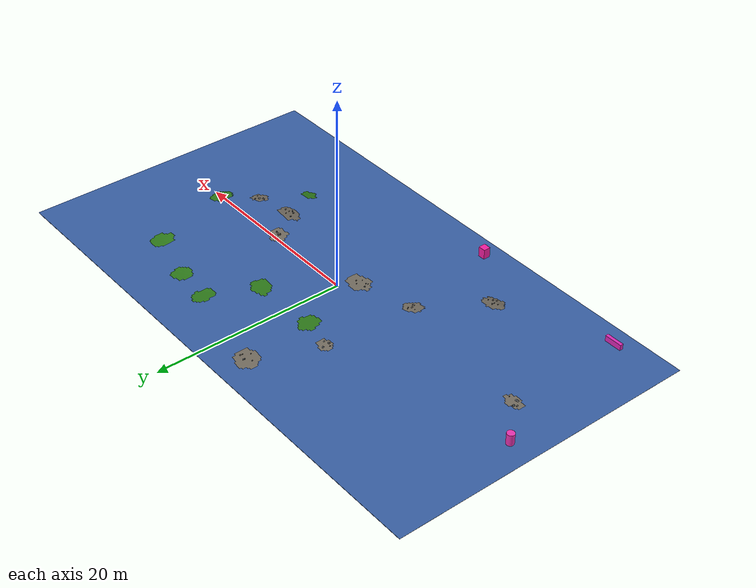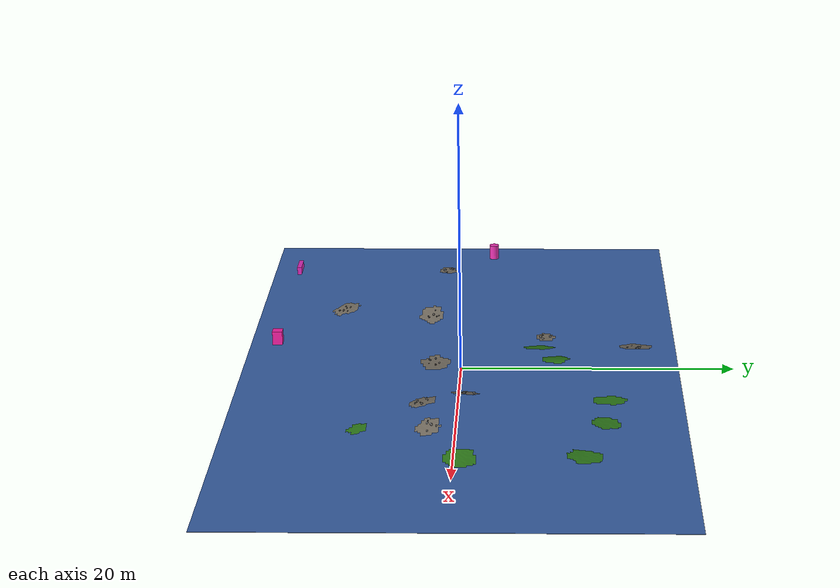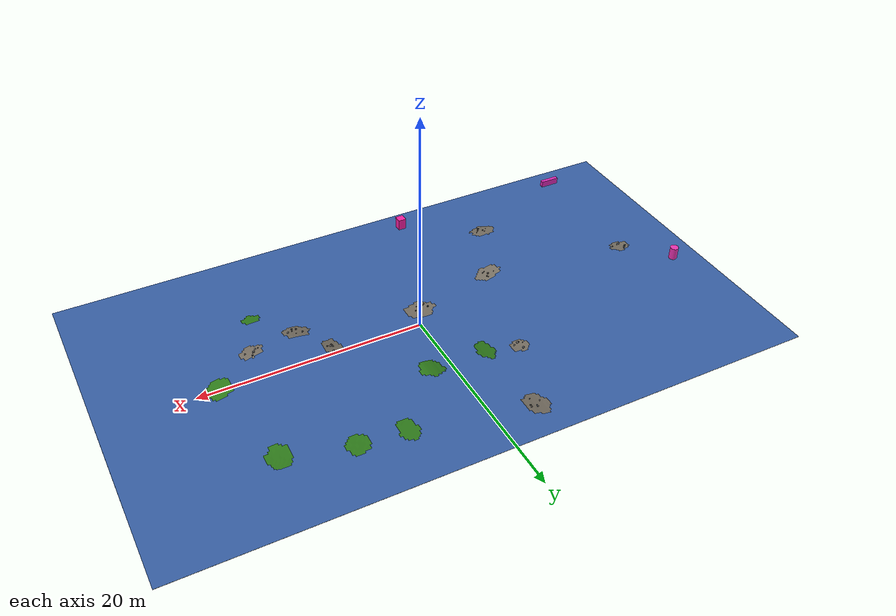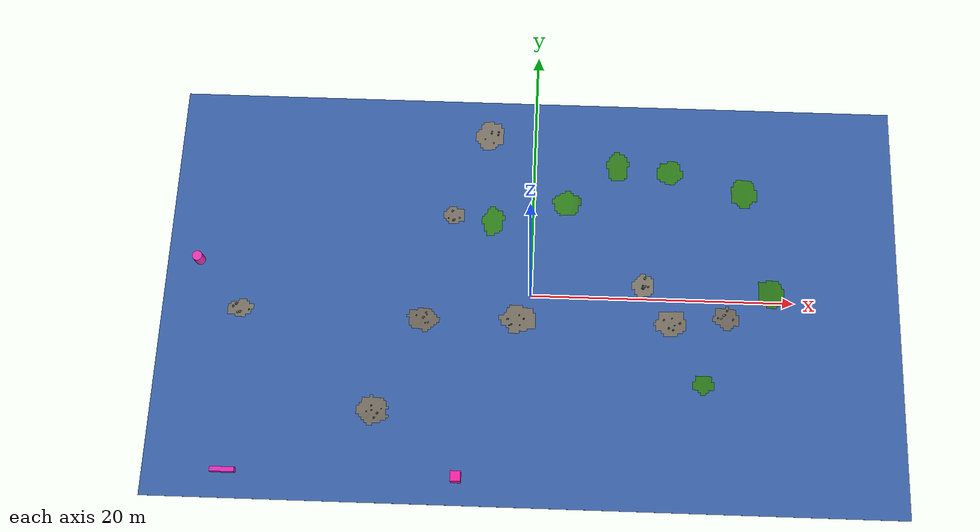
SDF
<sdf version="1.8">
 <world name="semantic_segmentation_world">
  <model name="heightmap_terrain_collision">
   <static>true</static>
   <link name="terrain_collision_link">
    <collision name="terrain_collision">
     <geometry>
      <heightmap>
       <uri>file://assets/quad_height.png</uri>
       <size>51.2 51.2 2.500000000</size>
       <pos>0 0 0</pos>
      </heightmap>
     </geometry>
     <surface><friction><ode><mu>1.1</mu><mu2>1.1</mu2></ode></friction></surface>
    </collision>
   </link>
  </model>
  <model name="flat_ground">
   <static>true</static>
   <link name="ground_link">
    <collision name="ground_collision">
     <geometry><box><size>56.000000 32.000000 0.030000</size></box></geometry>
     <surface><friction><ode><mu>1.0</mu><mu2>1.0</mu2></ode></friction></surface>
    </collision>
    <visual name="ground_visual">
     <geometry><box><size>56.000000 32.000000 0.030000</size></box></geometry>
     <material>
      <ambient>0.15839999999999999 0.2736 0.46799999999999997 1.0</ambient>
      <diffuse>0.22 0.38 0.65 1.0</diffuse>
      <specular>0.04 0.04 0.04 1.0</specular>
      <pbr>
       <metal>
        <albedo_map>file://assets/blue_ground.jpg</albedo_map>
        <roughness>0.9</roughness>
        <metalness>0.0</metalness>
       </metal>
      </pbr>
     </material>
    </visual>
   </link>
   <plugin filename="ignition-gazebo-label-system" name="ignition::gazebo::systems::Label">
    <label>1</label>
   </plugin>
  </model>
  <model name="grass_surface">
   <static>true</static>
   <link name="grass_surface_link">
    <visual name="grass_surface_visual">
     <geometry><mesh><uri>file://assets/grass_small_patches.obj</uri></mesh></geometry>
     <material>
      <ambient>0.1296 0.34559999999999996 0.072 1.0</ambient>
      <diffuse>0.18 0.48 0.1 1.0</diffuse>
      <specular>0.04 0.04 0.04 1.0</specular>
     </material>
     <cast_shadows>false</cast_shadows>
    </visual>
   </link>
   <plugin filename="ignition-gazebo-label-system" name="ignition::gazebo::systems::Label">
    <label>2</label>
   </plugin>
  </model>
  <model name="gravel_surface">
   <static>true</static>
   <link name="gravel_surface_link">
    <visual name="gravel_surface_visual">
     <geometry><mesh><uri>file://assets/gravel_small_patches.obj</uri></mesh></geometry>
     <material>
      <ambient>0.3312 0.3096 0.2736 1.0</ambient>
      <diffuse>0.46 0.43 0.38 1.0</diffuse>
      <specular>0.04 0.04 0.04 1.0</specular>
     </material>
     <cast_shadows>false</cast_shadows>
    </visual>
   </link>
   <plugin filename="ignition-gazebo-label-system" name="ignition::gazebo::systems::Label">
    <label>3</label>
   </plugin>
  </model>
  <model name="natural_rocks">
   <static>true</static>
   <link name="natural_rocks_link">
    <collision name="patch_01_stone_01_collision">
     <pose>-1.400813 -2.312199 0.070250 0.000000 0.000000 0.000000</pose>
     <geometry><sphere><radius>0.064482</radius></sphere></geometry>
     <surface><friction><ode><mu>1.0</mu><mu2>1.0</mu2></ode></friction></surface>
    </collision>
    <visual name="patch_01_stone_01_visual">
     <pose>-1.400813 -2.312199 0.070250 0.000000 0.000000 0.000000</pose>
     <geometry><sphere><radius>0.064482</radius></sphere></geometry>
     <material>
      <ambient>0.23031878038082693 0.24344725678887028 0.25657573319691357 1.0</ambient>
      <diffuse>0.31988719497337076 0.33812118998454205 0.35635518499571334 1.0</diffuse>
      <specular>0.04 0.04 0.04 1.0</specular>
     </material>
    </visual>
    <collision name="patch_01_stone_02_collision">
     <pose>-0.475857 -1.871641 0.071928 0.000000 0.000000 0.000000</pose>
     <geometry><sphere><radius>0.068250</radius></sphere></geometry>
     <surface><friction><ode><mu>1.0</mu><mu2>1.0</mu2></ode></friction></surface>
    </collision>
    <visual name="patch_01_stone_02_visual">
     <pose>-0.475857 -1.871641 0.071928 0.000000 0.000000 0.000000</pose>
     <geometry><sphere><radius>0.068250</radius></sphere></geometry>
     <material>
      <ambient>0.22597844898284078 0.2091066075628898 0.19223476614293877 1.0</ambient>
      <diffuse>0.3138589569206122 0.29042584383734693 0.26699273075408164 1.0</diffuse>
      <specular>0.04 0.04 0.04 1.0</specular>
     </material>
    </visual>
    <collision name="patch_01_stone_03_collision">
     <pose>-1.574241 -2.390171 0.067930 0.000000 0.000000 0.000000</pose>
     <geometry><sphere><radius>0.058431</radius></sphere></geometry>
     <surface><friction><ode><mu>1.0</mu><mu2>1.0</mu2></ode></friction></surface>
    </collision>
    <visual name="patch_01_stone_03_visual">
     <pose>-1.574241 -2.390171 0.067930 0.000000 0.000000 0.000000</pose>
     <geometry><sphere><radius>0.058431</radius></sphere></geometry>
     <material>
      <ambient>0.2741392310282517 0.27336239970204046 0.2725855683758292 1.0</ambient>
      <diffuse>0.380748931983683 0.3796699995861673 0.37859106718865165 1.0</diffuse>
      <specular>0.04 0.04 0.04 1.0</specular>
     </material>
    </visual>
    <collision name="patch_01_stone_04_collision">
     <pose>-1.700511 -1.913484 0.087154 0.000000 0.000000 0.000000</pose>
     <geometry><sphere><radius>0.080300</radius></sphere></geometry>
     <surface><friction><ode><mu>1.0</mu><mu2>1.0</mu2></ode></friction></surface>
    </collision>
    <visual name="patch_01_stone_04_visual">
     <pose>-1.700511 -1.913484 0.087154 0.000000 0.000000 0.000000</pose>
     <geometry><sphere><radius>0.080300</radius></sphere></geometry>
     <material>
      <ambient>0.18909966763713545 0.20659957556439554 0.2240994834916556 1.0</ambient>
      <diffuse>0.26263842727379927 0.28694385495054936 0.31124928262729945 1.0</diffuse>
      <specular>0.04 0.04 0.04 1.0</specular>
     </material>
    </visual>
    <collision name="patch_01_stone_05_collision">
     <pose>-0.779596 -2.372807 0.053223 0.000000 0.000000 0.000000</pose>
     <geometry><sphere><radius>0.048469</radius></sphere></geometry>
     <surface><friction><ode><mu>1.0</mu><mu2>1.0</mu2></ode></friction></surface>
    </collision>
    <visual name="patch_01_stone_05_visual">
     <pose>-0.779596 -2.372807 0.053223 0.000000 0.000000 0.000000</pose>
     <geometry><sphere><radius>0.048469</radius></sphere></geometry>
     <material>
      <ambient>0.25142629394607535 0.24319022346497113 0.23495415298386696 1.0</ambient>
      <diffuse>0.34920318603621575 0.3377641992569044 0.326325212477593 1.0</diffuse>
      <specular>0.04 0.04 0.04 1.0</specular>
     </material>
    </visual>
    <collision name="patch_01_stone_06_collision">
     <pose>-0.844577 -1.602838 0.071304 0.000000 0.000000 0.000000</pose>
     <geometry><sphere><radius>0.066862</radius></sphere></geometry>
     <surface><friction><ode><mu>1.0</mu><mu2>1.0</mu2></ode></friction></surface>
    </collision>
    <visual name="patch_01_stone_06_visual">
     <pose>-0.844577 -1.602838 0.071304 0.000000 0.000000 0.000000</pose>
     <geometry><sphere><radius>0.066862</radius></sphere></geometry>
     <material>
      <ambient>0.34569564078244597 0.3313426443958248 0.3169896480092036 1.0</ambient>
      <diffuse>0.4801328344200639 0.46019811721642334 0.4402634000127828 1.0</diffuse>
      <specular>0.04 0.04 0.04 1.0</specular>
     </material>
    </visual>
    <collision name="patch_02_stone_01_collision">
     <pose>8.813602 0.542755 1.563569 0.000000 0.000000 0.000000</pose>
     <geometry><sphere><radius>0.078546</radius></sphere></geometry>
     <surface><friction><ode><mu>1.0</mu><mu2>1.0</mu2></ode></friction></surface>
    </collision>
    <visual name="patch_02_stone_01_visual">
     <pose>8.813602 0.542755 1.563569 0.000000 0.000000 0.000000</pose>
     <geometry><sphere><radius>0.078546</radius></sphere></geometry>
     <material>
      <ambient>0.25730266982539796 0.2486146950774401 0.23992672032948223 1.0</ambient>
      <diffuse>0.35736481920194163 0.3452981876075557 0.3332315560131698 1.0</diffuse>
      <specular>0.04 0.04 0.04 1.0</specular>
     </material>
    </visual>
    <collision name="patch_02_stone_02_collision">
     <pose>8.570965 1.216734 1.469474 0.000000 0.000000 0.000000</pose>
     <geometry><sphere><radius>0.099684</radius></sphere></geometry>
     <surface><friction><ode><mu>1.0</mu><mu2>1.0</mu2></ode></friction></surface>
    </collision>
    <visual name="patch_02_stone_02_visual">
     <pose>8.570965 1.216734 1.469474 0.000000 0.000000 0.000000</pose>
     <geometry><sphere><radius>0.099684</radius></sphere></geometry>
     <material>
      <ambient>0.24657690552835226 0.25102890049770027 0.2554808954670482 1.0</ambient>
      <diffuse>0.3424679243449337 0.34865125069125036 0.354834577037567 1.0</diffuse>
      <specular>0.04 0.04 0.04 1.0</specular>
     </material>
    </visual>
    <collision name="patch_02_stone_03_collision">
     <pose>8.399833 0.613672 1.450029 0.000000 0.000000 0.000000</pose>
     <geometry><sphere><radius>0.080679</radius></sphere></geometry>
     <surface><friction><ode><mu>1.0</mu><mu2>1.0</mu2></ode></friction></surface>
    </collision>
    <visual name="patch_02_stone_03_visual">
     <pose>8.399833 0.613672 1.450029 0.000000 0.000000 0.000000</pose>
     <geometry><sphere><radius>0.080679</radius></sphere></geometry>
     <material>
      <ambient>0.24954241471094704 0.25148387960246454 0.2534253444939821 1.0</ambient>
      <diffuse>0.34658668709853757 0.34928316611453414 0.3519796451305307 1.0</diffuse>
      <specular>0.04 0.04 0.04 1.0</specular>
     </material>
    </visual>
    <collision name="patch_02_stone_04_collision">
     <pose>8.453732 0.386183 1.464443 0.000000 0.000000 0.000000</pose>
     <geometry><sphere><radius>0.055713</radius></sphere></geometry>
     <surface><friction><ode><mu>1.0</mu><mu2>1.0</mu2></ode></friction></surface>
    </collision>
    <visual name="patch_02_stone_04_visual">
     <pose>8.453732 0.386183 1.464443 0.000000 0.000000 0.000000</pose>
     <geometry><sphere><radius>0.055713</radius></sphere></geometry>
     <material>
      <ambient>0.2321781376242881 0.2222181409481468 0.21225814427200548 1.0</ambient>
      <diffuse>0.32246963558928904 0.3086363068724261 0.29480297815556317 1.0</diffuse>
      <specular>0.04 0.04 0.04 1.0</specular>
     </material>
    </visual>
    <collision name="patch_02_stone_05_collision">
     <pose>8.565533 0.566800 1.508316 0.000000 0.000000 0.000000</pose>
     <geometry><sphere><radius>0.098305</radius></sphere></geometry>
     <surface><friction><ode><mu>1.0</mu><mu2>1.0</mu2></ode></friction></surface>
    </collision>
    <visual name="patch_02_stone_05_visual">
     <pose>8.565533 0.566800 1.508316 0.000000 0.000000 0.000000</pose>
     <geometry><sphere><radius>0.098305</radius></sphere></geometry>
     <material>
      <ambient>0.2838612983448101 0.2785960032724128 0.2733307082000154 1.0</ambient>
      <diffuse>0.39425180325668074 0.38693889343390664 0.37962598361113253 1.0</diffuse>
      <specular>0.04 0.04 0.04 1.0</specular>
     </material>
    </visual>
    <collision name="patch_02_stone_06_collision">
     <pose>8.362515 0.448936 1.437671 0.000000 0.000000 0.000000</pose>
     <geometry><sphere><radius>0.057085</radius></sphere></geometry>
     <surface><friction><ode><mu>1.0</mu><mu2>1.0</mu2></ode></friction></surface>
    </collision>
    <visual name="patch_02_stone_06_visual">
     <pose>8.362515 0.448936 1.437671 0.000000 0.000000 0.000000</pose>
     <geometry><sphere><radius>0.057085</radius></sphere></geometry>
     <material>
      <ambient>0.3338619400763003 0.31902699025023 0.30419204042415965 1.0</ambient>
      <diffuse>0.4636971389948616 0.44309304201420835 0.4224889450335551 1.0</diffuse>
      <specular>0.04 0.04 0.04 1.0</specular>
     </material>
    </visual>
    <collision name="patch_03_stone_01_collision">
     <pose>-22.381382 -1.397717 0.086864 0.000000 0.000000 0.000000</pose>
     <geometry><sphere><radius>0.099413</radius></sphere></geometry>
     <surface><friction><ode><mu>1.0</mu><mu2>1.0</mu2></ode></friction></surface>
    </collision>
    <visual name="patch_03_stone_01_visual">
     <pose>-22.381382 -1.397717 0.086864 0.000000 0.000000 0.000000</pose>
     <geometry><sphere><radius>0.099413</radius></sphere></geometry>
     <material>
      <ambient>0.19900934207056545 0.21697289478900986 0.23493644750745424 1.0</ambient>
      <diffuse>0.2764018639868965 0.3013512427625137 0.3263006215381309 1.0</diffuse>
      <specular>0.04 0.04 0.04 1.0</specular>
     </material>
    </visual>
    <collision name="patch_03_stone_02_collision">
     <pose>-22.279584 -1.319368 0.067399 0.000000 0.000000 0.000000</pose>
     <geometry><sphere><radius>0.045068</radius></sphere></geometry>
     <surface><friction><ode><mu>1.0</mu><mu2>1.0</mu2></ode></friction></surface>
    </collision>
    <visual name="patch_03_stone_02_visual">
     <pose>-22.279584 -1.319368 0.067399 0.000000 0.000000 0.000000</pose>
     <geometry><sphere><radius>0.045068</radius></sphere></geometry>
     <material>
      <ambient>0.28673924344048574 0.28252767955964836 0.278316115678811 1.0</ambient>
      <diffuse>0.3982489492228969 0.39239955494395606 0.38655016066501524 1.0</diffuse>
      <specular>0.04 0.04 0.04 1.0</specular>
     </material>
    </visual>
    <collision name="patch_03_stone_03_collision">
     <pose>-22.202628 -2.046692 0.095681 0.000000 0.000000 0.000000</pose>
     <geometry><sphere><radius>0.099534</radius></sphere></geometry>
     <surface><friction><ode><mu>1.0</mu><mu2>1.0</mu2></ode></friction></surface>
    </collision>
    <visual name="patch_03_stone_03_visual">
     <pose>-22.202628 -2.046692 0.095681 0.000000 0.000000 0.000000</pose>
     <geometry><sphere><radius>0.099534</radius></sphere></geometry>
     <material>
      <ambient>0.3305488228081188 0.3349987586820402 0.3394486945559616 1.0</ambient>
      <diffuse>0.45909558723349836 0.46527605372505587 0.4714565202166134 1.0</diffuse>
      <specular>0.04 0.04 0.04 1.0</specular>
     </material>
    </visual>
    <collision name="patch_03_stone_04_collision">
     <pose>-21.359974 -1.845425 0.152983 0.000000 0.000000 0.000000</pose>
     <geometry><sphere><radius>0.060999</radius></sphere></geometry>
     <surface><friction><ode><mu>1.0</mu><mu2>1.0</mu2></ode></friction></surface>
    </collision>
    <visual name="patch_03_stone_04_visual">
     <pose>-21.359974 -1.845425 0.152983 0.000000 0.000000 0.000000</pose>
     <geometry><sphere><radius>0.060999</radius></sphere></geometry>
     <material>
      <ambient>0.23178513061607858 0.2262697116365308 0.22075429265698304 1.0</ambient>
      <diffuse>0.3219237925223314 0.3142634883840706 0.3066031842458098 1.0</diffuse>
      <specular>0.04 0.04 0.04 1.0</specular>
     </material>
    </visual>
    <collision name="patch_03_stone_05_collision">
     <pose>-22.595125 -1.590678 0.078354 0.000000 0.000000 0.000000</pose>
     <geometry><sphere><radius>0.082529</radius></sphere></geometry>
     <surface><friction><ode><mu>1.0</mu><mu2>1.0</mu2></ode></friction></surface>
    </collision>
    <visual name="patch_03_stone_05_visual">
     <pose>-22.595125 -1.590678 0.078354 0.000000 0.000000 0.000000</pose>
     <geometry><sphere><radius>0.082529</radius></sphere></geometry>
     <material>
      <ambient>0.2940769071738203 0.2910562075624311 0.28803550795104194 1.0</ambient>
      <diffuse>0.4084401488525282 0.4042447327255988 0.4000493165986694 1.0</diffuse>
      <specular>0.04 0.04 0.04 1.0</specular>
     </material>
    </visual>
    <collision name="patch_03_stone_06_collision">
     <pose>-22.028265 -2.007158 0.110905 0.000000 0.000000 0.000000</pose>
     <geometry><sphere><radius>0.095665</radius></sphere></geometry>
     <surface><friction><ode><mu>1.0</mu><mu2>1.0</mu2></ode></friction></surface>
    </collision>
    <visual name="patch_03_stone_06_visual">
     <pose>-22.028265 -2.007158 0.110905 0.000000 0.000000 0.000000</pose>
     <geometry><sphere><radius>0.095665</radius></sphere></geometry>
     <material>
      <ambient>0.28388169792028484 0.2981310769618701 0.31238045600345526 1.0</ambient>
      <diffuse>0.39428013600039563 0.41407094022481955 0.43386174444924347 1.0</diffuse>
      <specular>0.04 0.04 0.04 1.0</specular>
     </material>
    </visual>
    <collision name="patch_04_stone_01_collision">
     <pose>15.152851 -1.762213 1.393646 0.000000 0.000000 0.000000</pose>
     <geometry><sphere><radius>0.073885</radius></sphere></geometry>
     <surface><friction><ode><mu>1.0</mu><mu2>1.0</mu2></ode></friction></surface>
    </collision>
    <visual name="patch_04_stone_01_visual">
     <pose>15.152851 -1.762213 1.393646 0.000000 0.000000 0.000000</pose>
     <geometry><sphere><radius>0.073885</radius></sphere></geometry>
     <material>
      <ambient>0.31589823293057434 0.31052502761173867 0.305151822292903 1.0</ambient>
      <diffuse>0.43874754573690883 0.43128476057185927 0.4238219754068097 1.0</diffuse>
      <specular>0.04 0.04 0.04 1.0</specular>
     </material>
    </visual>
    <collision name="patch_04_stone_02_collision">
     <pose>14.468168 -1.509704 1.594836 0.000000 0.000000 0.000000</pose>
     <geometry><sphere><radius>0.097565</radius></sphere></geometry>
     <surface><friction><ode><mu>1.0</mu><mu2>1.0</mu2></ode></friction></surface>
    </collision>
    <visual name="patch_04_stone_02_visual">
     <pose>14.468168 -1.509704 1.594836 0.000000 0.000000 0.000000</pose>
     <geometry><sphere><radius>0.097565</radius></sphere></geometry>
     <material>
      <ambient>0.33503175301982735 0.341347285925066 0.3476628188303047 1.0</ambient>
      <diffuse>0.4653218791942047 0.47409345267370284 0.482865026153201 1.0</diffuse>
      <specular>0.04 0.04 0.04 1.0</specular>
     </material>
    </visual>
    <collision name="patch_04_stone_03_collision">
     <pose>14.697412 -1.146765 1.574162 0.000000 0.000000 0.000000</pose>
     <geometry><sphere><radius>0.071099</radius></sphere></geometry>
     <surface><friction><ode><mu>1.0</mu><mu2>1.0</mu2></ode></friction></surface>
    </collision>
    <visual name="patch_04_stone_03_visual">
     <pose>14.697412 -1.146765 1.574162 0.000000 0.000000 0.000000</pose>
     <geometry><sphere><radius>0.071099</radius></sphere></geometry>
     <material>
      <ambient>0.2787440856696125 0.26762219349751737 0.25650030132542223 1.0</ambient>
      <diffuse>0.38714456343001735 0.37169749096877414 0.3562504185075309 1.0</diffuse>
      <specular>0.04 0.04 0.04 1.0</specular>
     </material>
    </visual>
    <collision name="patch_04_stone_04_collision">
     <pose>14.529850 -1.475666 1.580063 0.000000 0.000000 0.000000</pose>
     <geometry><sphere><radius>0.080489</radius></sphere></geometry>
     <surface><friction><ode><mu>1.0</mu><mu2>1.0</mu2></ode></friction></surface>
    </collision>
    <visual name="patch_04_stone_04_visual">
     <pose>14.529850 -1.475666 1.580063 0.000000 0.000000 0.000000</pose>
     <geometry><sphere><radius>0.080489</radius></sphere></geometry>
     <material>
      <ambient>0.3148681011376709 0.3067939784855144 0.2987198558333579 1.0</ambient>
      <diffuse>0.437316807135654 0.4261027478965478 0.41488868865744155 1.0</diffuse>
      <specular>0.04 0.04 0.04 1.0</specular>
     </material>
    </visual>
    <collision name="patch_04_stone_05_collision">
     <pose>14.005181 -1.752342 1.632458 0.000000 0.000000 0.000000</pose>
     <geometry><sphere><radius>0.053533</radius></sphere></geometry>
     <surface><friction><ode><mu>1.0</mu><mu2>1.0</mu2></ode></friction></surface>
    </collision>
    <visual name="patch_04_stone_05_visual">
     <pose>14.005181 -1.752342 1.632458 0.000000 0.000000 0.000000</pose>
     <geometry><sphere><radius>0.053533</radius></sphere></geometry>
     <material>
      <ambient>0.30991374475131583 0.2940713872983987 0.27822902984548165 1.0</ambient>
      <diffuse>0.43043575659904976 0.40843248235888713 0.3864292081187245 1.0</diffuse>
      <specular>0.04 0.04 0.04 1.0</specular>
     </material>
    </visual>
    <collision name="patch_04_stone_06_collision">
     <pose>14.259907 -1.783049 1.586951 0.000000 0.000000 0.000000</pose>
     <geometry><sphere><radius>0.077332</radius></sphere></geometry>
     <surface><friction><ode><mu>1.0</mu><mu2>1.0</mu2></ode></friction></surface>
    </collision>
    <visual name="patch_04_stone_06_visual">
     <pose>14.259907 -1.783049 1.586951 0.000000 0.000000 0.000000</pose>
     <geometry><sphere><radius>0.077332</radius></sphere></geometry>
     <material>
      <ambient>0.32791243536198295 0.338649883289443 0.349387331216903 1.0</ambient>
      <diffuse>0.4554339380027541 0.4703470601242264 0.48526018224569867 1.0</diffuse>
      <specular>0.04 0.04 0.04 1.0</specular>
     </material>
    </visual>
    <collision name="patch_05_stone_01_collision">
     <pose>11.164102 -2.284640 1.728868 0.000000 0.000000 0.000000</pose>
     <geometry><sphere><radius>0.089081</radius></sphere></geometry>
     <surface><friction><ode><mu>1.0</mu><mu2>1.0</mu2></ode></friction></surface>
    </collision>
    <visual name="patch_05_stone_01_visual">
     <pose>11.164102 -2.284640 1.728868 0.000000 0.000000 0.000000</pose>
     <geometry><sphere><radius>0.089081</radius></sphere></geometry>
     <material>
      <ambient>0.24596818536196804 0.23992680651448628 0.23388542766700454 1.0</ambient>
      <diffuse>0.34162247966940007 0.3332316757145643 0.32484087175972853 1.0</diffuse>
      <specular>0.04 0.04 0.04 1.0</specular>
     </material>
    </visual>
    <collision name="patch_05_stone_02_collision">
     <pose>10.348749 -2.631935 1.563500 0.000000 0.000000 0.000000</pose>
     <geometry><sphere><radius>0.083662</radius></sphere></geometry>
     <surface><friction><ode><mu>1.0</mu><mu2>1.0</mu2></ode></friction></surface>
    </collision>
    <visual name="patch_05_stone_02_visual">
     <pose>10.348749 -2.631935 1.563500 0.000000 0.000000 0.000000</pose>
     <geometry><sphere><radius>0.083662</radius></sphere></geometry>
     <material>
      <ambient>0.22673509022337357 0.22144984691201078 0.21616460360064801 1.0</ambient>
      <diffuse>0.3149098475324633 0.3075692318222372 0.3002286161120111 1.0</diffuse>
      <specular>0.04 0.04 0.04 1.0</specular>
     </material>
    </visual>
    <collision name="patch_05_stone_03_collision">
     <pose>9.987405 -2.033945 1.624545 0.000000 0.000000 0.000000</pose>
     <geometry><sphere><radius>0.073365</radius></sphere></geometry>
     <surface><friction><ode><mu>1.0</mu><mu2>1.0</mu2></ode></friction></surface>
    </collision>
    <visual name="patch_05_stone_03_visual">
     <pose>9.987405 -2.033945 1.624545 0.000000 0.000000 0.000000</pose>
     <geometry><sphere><radius>0.073365</radius></sphere></geometry>
     <material>
      <ambient>0.2448129041588604 0.2454088709439891 0.24600483772911785 1.0</ambient>
      <diffuse>0.34001792244286166 0.3408456540888738 0.3416733857348859 1.0</diffuse>
      <specular>0.04 0.04 0.04 1.0</specular>
     </material>
    </visual>
    <collision name="patch_05_stone_04_collision">
     <pose>10.573811 -1.919163 1.733215 0.000000 0.000000 0.000000</pose>
     <geometry><sphere><radius>0.051418</radius></sphere></geometry>
     <surface><friction><ode><mu>1.0</mu><mu2>1.0</mu2></ode></friction></surface>
    </collision>
    <visual name="patch_05_stone_04_visual">
     <pose>10.573811 -1.919163 1.733215 0.000000 0.000000 0.000000</pose>
     <geometry><sphere><radius>0.051418</radius></sphere></geometry>
     <material>
      <ambient>0.238191841738877 0.23712731482139474 0.23606278790391247 1.0</ambient>
      <diffuse>0.33082200241510695 0.3293434928074927 0.32786498319987845 1.0</diffuse>
      <specular>0.04 0.04 0.04 1.0</specular>
     </material>
    </visual>
    <collision name="patch_05_stone_05_collision">
     <pose>10.677409 -2.777695 1.556436 0.000000 0.000000 0.000000</pose>
     <geometry><sphere><radius>0.070168</radius></sphere></geometry>
     <surface><friction><ode><mu>1.0</mu><mu2>1.0</mu2></ode></friction></surface>
    </collision>
    <visual name="patch_05_stone_05_visual">
     <pose>10.677409 -2.777695 1.556436 0.000000 0.000000 0.000000</pose>
     <geometry><sphere><radius>0.070168</radius></sphere></geometry>
     <material>
      <ambient>0.18670407311973117 0.202045681254956 0.21738728939018084 1.0</ambient>
      <diffuse>0.2593112126662933 0.2806190017429945 0.30192679081969565 1.0</diffuse>
      <specular>0.04 0.04 0.04 1.0</specular>
     </material>
    </visual>
    <collision name="patch_05_stone_06_collision">
     <pose>10.773625 -2.423929 1.644808 0.000000 0.000000 0.000000</pose>
     <geometry><sphere><radius>0.052906</radius></sphere></geometry>
     <surface><friction><ode><mu>1.0</mu><mu2>1.0</mu2></ode></friction></surface>
    </collision>
    <visual name="patch_05_stone_06_visual">
     <pose>10.773625 -2.423929 1.644808 0.000000 0.000000 0.000000</pose>
     <geometry><sphere><radius>0.052906</radius></sphere></geometry>
     <material>
      <ambient>0.28956918609624727 0.27288329722364346 0.25619740835103966 1.0</ambient>
      <diffuse>0.40217942513367677 0.3790045794772826 0.35582973382088845 1.0</diffuse>
      <specular>0.04 0.04 0.04 1.0</specular>
     </material>
    </visual>
    <collision name="patch_06_stone_01_collision">
     <pose>-3.348878 12.358122 0.414544 0.000000 0.000000 0.000000</pose>
     <geometry><sphere><radius>0.061033</radius></sphere></geometry>
     <surface><friction><ode><mu>1.0</mu><mu2>1.0</mu2></ode></friction></surface>
    </collision>
    <visual name="patch_06_stone_01_visual">
     <pose>-3.348878 12.358122 0.414544 0.000000 0.000000 0.000000</pose>
     <geometry><sphere><radius>0.061033</radius></sphere></geometry>
     <material>
      <ambient>0.3056489429229704 0.30983099685228777 0.3140130507816052 1.0</ambient>
      <diffuse>0.42451242072634776 0.4303208289615108 0.43612923719667385 1.0</diffuse>
      <specular>0.04 0.04 0.04 1.0</specular>
     </material>
    </visual>
    <collision name="patch_06_stone_02_collision">
     <pose>-3.004148 13.248348 0.497263 0.000000 0.000000 0.000000</pose>
     <geometry><sphere><radius>0.078426</radius></sphere></geometry>
     <surface><friction><ode><mu>1.0</mu><mu2>1.0</mu2></ode></friction></surface>
    </collision>
    <visual name="patch_06_stone_02_visual">
     <pose>-3.004148 13.248348 0.497263 0.000000 0.000000 0.000000</pose>
     <geometry><sphere><radius>0.078426</radius></sphere></geometry>
     <material>
      <ambient>0.274286346966666 0.25915789818389906 0.2440294494011321 1.0</ambient>
      <diffuse>0.38095325967592497 0.35994152525541534 0.3389297908349057 1.0</diffuse>
      <specular>0.04 0.04 0.04 1.0</specular>
     </material>
    </visual>
    <collision name="patch_06_stone_03_collision">
     <pose>-3.550420 13.170156 0.375553 0.000000 0.000000 0.000000</pose>
     <geometry><sphere><radius>0.067774</radius></sphere></geometry>
     <surface><friction><ode><mu>1.0</mu><mu2>1.0</mu2></ode></friction></surface>
    </collision>
    <visual name="patch_06_stone_03_visual">
     <pose>-3.550420 13.170156 0.375553 0.000000 0.000000 0.000000</pose>
     <geometry><sphere><radius>0.067774</radius></sphere></geometry>
     <material>
      <ambient>0.20154709940358215 0.21945734374017414 0.2373675880767661 1.0</ambient>
      <diffuse>0.27992652694941966 0.3048018663057974 0.3296772056621752 1.0</diffuse>
      <specular>0.04 0.04 0.04 1.0</specular>
     </material>
    </visual>
    <collision name="patch_06_stone_04_collision">
     <pose>-4.065538 12.722937 0.274332 0.000000 0.000000 0.000000</pose>
     <geometry><sphere><radius>0.060152</radius></sphere></geometry>
     <surface><friction><ode><mu>1.0</mu><mu2>1.0</mu2></ode></friction></surface>
    </collision>
    <visual name="patch_06_stone_04_visual">
     <pose>-4.065538 12.722937 0.274332 0.000000 0.000000 0.000000</pose>
     <geometry><sphere><radius>0.060152</radius></sphere></geometry>
     <material>
      <ambient>0.34954168940545555 0.34271821289749815 0.33589473638954076 1.0</ambient>
      <diffuse>0.48547456861868826 0.4759975179131919 0.4665204672076955 1.0</diffuse>
      <specular>0.04 0.04 0.04 1.0</specular>
     </material>
    </visual>
    <collision name="patch_06_stone_05_collision">
     <pose>-3.025439 13.019118 0.487197 0.000000 0.000000 0.000000</pose>
     <geometry><sphere><radius>0.065335</radius></sphere></geometry>
     <surface><friction><ode><mu>1.0</mu><mu2>1.0</mu2></ode></friction></surface>
    </collision>
    <visual name="patch_06_stone_05_visual">
     <pose>-3.025439 13.019118 0.487197 0.000000 0.000000 0.000000</pose>
     <geometry><sphere><radius>0.065335</radius></sphere></geometry>
     <material>
      <ambient>0.25817363855130304 0.2580534001411473 0.2579331617309915 1.0</ambient>
      <diffuse>0.3585744979879209 0.3584075001960379 0.3582405024041549 1.0</diffuse>
      <specular>0.04 0.04 0.04 1.0</specular>
     </material>
    </visual>
    <collision name="patch_06_stone_06_collision">
     <pose>-3.543631 13.327421 0.378638 0.000000 0.000000 0.000000</pose>
     <geometry><sphere><radius>0.071672</radius></sphere></geometry>
     <surface><friction><ode><mu>1.0</mu><mu2>1.0</mu2></ode></friction></surface>
    </collision>
    <visual name="patch_06_stone_06_visual">
     <pose>-3.543631 13.327421 0.378638 0.000000 0.000000 0.000000</pose>
     <geometry><sphere><radius>0.071672</radius></sphere></geometry>
     <material>
      <ambient>0.29382013821539577 0.30813817135538785 0.32245620449537993 1.0</ambient>
      <diffuse>0.4080835252991608 0.4279696824380387 0.44785583957691655 1.0</diffuse>
      <specular>0.04 0.04 0.04 1.0</specular>
     </material>
    </visual>
    <collision name="patch_07_stone_01_collision">
     <pose>-8.494432 -2.220768 1.421140 0.000000 0.000000 0.000000</pose>
     <geometry><sphere><radius>0.054365</radius></sphere></geometry>
     <surface><friction><ode><mu>1.0</mu><mu2>1.0</mu2></ode></friction></surface>
    </collision>
    <visual name="patch_07_stone_01_visual">
     <pose>-8.494432 -2.220768 1.421140 0.000000 0.000000 0.000000</pose>
     <geometry><sphere><radius>0.054365</radius></sphere></geometry>
     <material>
      <ambient>0.3035795515296954 0.3089601057423422 0.3143406599549889 1.0</ambient>
      <diffuse>0.4216382660134659 0.4291112579754752 0.43658424993748457 1.0</diffuse>
      <specular>0.04 0.04 0.04 1.0</specular>
     </material>
    </visual>
    <collision name="patch_07_stone_02_collision">
     <pose>-7.806063 -2.725960 1.218070 0.000000 0.000000 0.000000</pose>
     <geometry><sphere><radius>0.054845</radius></sphere></geometry>
     <surface><friction><ode><mu>1.0</mu><mu2>1.0</mu2></ode></friction></surface>
    </collision>
    <visual name="patch_07_stone_02_visual">
     <pose>-7.806063 -2.725960 1.218070 0.000000 0.000000 0.000000</pose>
     <geometry><sphere><radius>0.054845</radius></sphere></geometry>
     <material>
      <ambient>0.24946119511731446 0.24722385095026264 0.2449865067832108 1.0</ambient>
      <diffuse>0.3464738821073812 0.34336645965314255 0.3402590371989039 1.0</diffuse>
      <specular>0.04 0.04 0.04 1.0</specular>
     </material>
    </visual>
    <collision name="patch_07_stone_03_collision">
     <pose>-7.630878 -2.668742 1.182496 0.000000 0.000000 0.000000</pose>
     <geometry><sphere><radius>0.064974</radius></sphere></geometry>
     <surface><friction><ode><mu>1.0</mu><mu2>1.0</mu2></ode></friction></surface>
    </collision>
    <visual name="patch_07_stone_03_visual">
     <pose>-7.630878 -2.668742 1.182496 0.000000 0.000000 0.000000</pose>
     <geometry><sphere><radius>0.064974</radius></sphere></geometry>
     <material>
      <ambient>0.3301281652972095 0.32420037555361236 0.3182725858100152 1.0</ambient>
      <diffuse>0.45851134069056876 0.4502782993800172 0.4420452580694656 1.0</diffuse>
      <specular>0.04 0.04 0.04 1.0</specular>
     </material>
    </visual>
    <collision name="patch_07_stone_04_collision">
     <pose>-7.802803 -1.921931 1.244681 0.000000 0.000000 0.000000</pose>
     <geometry><sphere><radius>0.058461</radius></sphere></geometry>
     <surface><friction><ode><mu>1.0</mu><mu2>1.0</mu2></ode></friction></surface>
    </collision>
    <visual name="patch_07_stone_04_visual">
     <pose>-7.802803 -1.921931 1.244681 0.000000 0.000000 0.000000</pose>
     <geometry><sphere><radius>0.058461</radius></sphere></geometry>
     <material>
      <ambient>0.32043235615640275 0.3110492464403095 0.30166613672421627 1.0</ambient>
      <diffuse>0.445044939106115 0.4320128422782077 0.4189807454503004 1.0</diffuse>
      <specular>0.04 0.04 0.04 1.0</specular>
     </material>
    </visual>
    <collision name="patch_07_stone_05_collision">
     <pose>-7.724887 -2.068623 1.219040 0.000000 0.000000 0.000000</pose>
     <geometry><sphere><radius>0.056770</radius></sphere></geometry>
     <surface><friction><ode><mu>1.0</mu><mu2>1.0</mu2></ode></friction></surface>
    </collision>
    <visual name="patch_07_stone_05_visual">
     <pose>-7.724887 -2.068623 1.219040 0.000000 0.000000 0.000000</pose>
     <geometry><sphere><radius>0.056770</radius></sphere></geometry>
     <material>
      <ambient>0.22790443987251552 0.22577724179642372 0.22365004372033193 1.0</ambient>
      <diffuse>0.3165339442673827 0.31357950249503297 0.31062506072268325 1.0</diffuse>
      <specular>0.04 0.04 0.04 1.0</specular>
     </material>
    </visual>
    <collision name="patch_07_stone_06_collision">
     <pose>-7.963489 -2.320214 1.292305 0.000000 0.000000 0.000000</pose>
     <geometry><sphere><radius>0.091455</radius></sphere></geometry>
     <surface><friction><ode><mu>1.0</mu><mu2>1.0</mu2></ode></friction></surface>
    </collision>
    <visual name="patch_07_stone_06_visual">
     <pose>-7.963489 -2.320214 1.292305 0.000000 0.000000 0.000000</pose>
     <geometry><sphere><radius>0.091455</radius></sphere></geometry>
     <material>
      <ambient>0.272505209937764 0.25707984411875634 0.24165447829974868 1.0</ambient>
      <diffuse>0.37847945824689444 0.35705533905382825 0.33563121986076205 1.0</diffuse>
      <specular>0.04 0.04 0.04 1.0</specular>
     </material>
    </visual>
    <collision name="patch_08_stone_01_collision">
     <pose>-6.173393 5.890516 0.169223 0.000000 0.000000 0.000000</pose>
     <geometry><sphere><radius>0.098243</radius></sphere></geometry>
     <surface><friction><ode><mu>1.0</mu><mu2>1.0</mu2></ode></friction></surface>
    </collision>
    <visual name="patch_08_stone_01_visual">
     <pose>-6.173393 5.890516 0.169223 0.000000 0.000000 0.000000</pose>
     <geometry><sphere><radius>0.098243</radius></sphere></geometry>
     <material>
      <ambient>0.28388126139548503 0.2819701306607489 0.28005899992601274 1.0</ambient>
      <diffuse>0.3942795297159515 0.39162518147326236 0.38897083323057324 1.0</diffuse>
      <specular>0.04 0.04 0.04 1.0</specular>
     </material>
    </visual>
    <collision name="patch_08_stone_02_collision">
     <pose>-6.607294 6.047440 0.152951 0.000000 0.000000 0.000000</pose>
     <geometry><sphere><radius>0.056783</radius></sphere></geometry>
     <surface><friction><ode><mu>1.0</mu><mu2>1.0</mu2></ode></friction></surface>
    </collision>
    <visual name="patch_08_stone_02_visual">
     <pose>-6.607294 6.047440 0.152951 0.000000 0.000000 0.000000</pose>
     <geometry><sphere><radius>0.056783</radius></sphere></geometry>
     <material>
      <ambient>0.23562550794398723 0.23162036675248548 0.22761522556098374 1.0</ambient>
      <diffuse>0.3272576499222045 0.32169495382289653 0.31613225772358855 1.0</diffuse>
      <specular>0.04 0.04 0.04 1.0</specular>
     </material>
    </visual>
    <collision name="patch_08_stone_03_collision">
     <pose>-5.753929 6.065360 0.156840 0.000000 0.000000 0.000000</pose>
     <geometry><sphere><radius>0.079272</radius></sphere></geometry>
     <surface><friction><ode><mu>1.0</mu><mu2>1.0</mu2></ode></friction></surface>
    </collision>
    <visual name="patch_08_stone_03_visual">
     <pose>-5.753929 6.065360 0.156840 0.000000 0.000000 0.000000</pose>
     <geometry><sphere><radius>0.079272</radius></sphere></geometry>
     <material>
      <ambient>0.33044339706604486 0.32574059155932106 0.3210377860525972 1.0</ambient>
      <diffuse>0.458949162591729 0.4524174882768348 0.4458858139619406 1.0</diffuse>
      <specular>0.04 0.04 0.04 1.0</specular>
     </material>
    </visual>
    <collision name="patch_08_stone_04_collision">
     <pose>-6.325647 6.620488 0.137419 0.000000 0.000000 0.000000</pose>
     <geometry><sphere><radius>0.097583</radius></sphere></geometry>
     <surface><friction><ode><mu>1.0</mu><mu2>1.0</mu2></ode></friction></surface>
    </collision>
    <visual name="patch_08_stone_04_visual">
     <pose>-6.325647 6.620488 0.137419 0.000000 0.000000 0.000000</pose>
     <geometry><sphere><radius>0.097583</radius></sphere></geometry>
     <material>
      <ambient>0.2367985391905521 0.2481375469802338 0.2594765547699155 1.0</ambient>
      <diffuse>0.32888685998687794 0.3446354819169914 0.36038410384710484 1.0</diffuse>
      <specular>0.04 0.04 0.04 1.0</specular>
     </material>
    </visual>
    <collision name="patch_08_stone_05_collision">
     <pose>-6.253182 5.867520 0.168064 0.000000 0.000000 0.000000</pose>
     <geometry><sphere><radius>0.087368</radius></sphere></geometry>
     <surface><friction><ode><mu>1.0</mu><mu2>1.0</mu2></ode></friction></surface>
    </collision>
    <visual name="patch_08_stone_05_visual">
     <pose>-6.253182 5.867520 0.168064 0.000000 0.000000 0.000000</pose>
     <geometry><sphere><radius>0.087368</radius></sphere></geometry>
     <material>
      <ambient>0.2680653151015074 0.2607352799555777 0.25340524480964804 1.0</ambient>
      <diffuse>0.3723129376409825 0.36213233327163574 0.351951728902289 1.0</diffuse>
      <specular>0.04 0.04 0.04 1.0</specular>
     </material>
    </visual>
    <collision name="patch_08_stone_06_collision">
     <pose>-6.213553 5.830205 0.149977 0.000000 0.000000 0.000000</pose>
     <geometry><sphere><radius>0.047427</radius></sphere></geometry>
     <surface><friction><ode><mu>1.0</mu><mu2>1.0</mu2></ode></friction></surface>
    </collision>
    <visual name="patch_08_stone_06_visual">
     <pose>-6.213553 5.830205 0.149977 0.000000 0.000000 0.000000</pose>
     <geometry><sphere><radius>0.047427</radius></sphere></geometry>
     <material>
      <ambient>0.3057332127869098 0.29090318814206245 0.2760731634972151 1.0</ambient>
      <diffuse>0.4246294622040414 0.4040322057528645 0.38343494930168764 1.0</diffuse>
      <specular>0.04 0.04 0.04 1.0</specular>
     </material>
    </visual>
    <collision name="patch_09_stone_01_collision">
     <pose>-11.483798 -9.002362 0.601560 0.000000 0.000000 0.000000</pose>
     <geometry><sphere><radius>0.069660</radius></sphere></geometry>
     <surface><friction><ode><mu>1.0</mu><mu2>1.0</mu2></ode></friction></surface>
    </collision>
    <visual name="patch_09_stone_01_visual">
     <pose>-11.483798 -9.002362 0.601560 0.000000 0.000000 0.000000</pose>
     <geometry><sphere><radius>0.069660</radius></sphere></geometry>
     <material>
      <ambient>0.23203588745229273 0.22796140948886945 0.2238869315254462 1.0</ambient>
      <diffuse>0.32227206590596214 0.3166130687345409 0.3109540715631197 1.0</diffuse>
      <specular>0.04 0.04 0.04 1.0</specular>
     </material>
    </visual>
    <collision name="patch_09_stone_02_collision">
     <pose>-11.243188 -9.835250 0.405672 0.000000 0.000000 0.000000</pose>
     <geometry><sphere><radius>0.076437</radius></sphere></geometry>
     <surface><friction><ode><mu>1.0</mu><mu2>1.0</mu2></ode></friction></surface>
    </collision>
    <visual name="patch_09_stone_02_visual">
     <pose>-11.243188 -9.835250 0.405672 0.000000 0.000000 0.000000</pose>
     <geometry><sphere><radius>0.076437</radius></sphere></geometry>
     <material>
      <ambient>0.23341717485141092 0.217672113189272 0.20192705152713303 1.0</ambient>
      <diffuse>0.32419052062695963 0.30232237942954443 0.2804542382321292 1.0</diffuse>
      <specular>0.04 0.04 0.04 1.0</specular>
     </material>
    </visual>
    <collision name="patch_09_stone_03_collision">
     <pose>-11.822373 -9.405681 0.535910 0.000000 0.000000 0.000000</pose>
     <geometry><sphere><radius>0.056664</radius></sphere></geometry>
     <surface><friction><ode><mu>1.0</mu><mu2>1.0</mu2></ode></friction></surface>
    </collision>
    <visual name="patch_09_stone_03_visual">
     <pose>-11.822373 -9.405681 0.535910 0.000000 0.000000 0.000000</pose>
     <geometry><sphere><radius>0.056664</radius></sphere></geometry>
     <material>
      <ambient>0.2963411985134393 0.2838453084813222 0.2713494184492051 1.0</ambient>
      <diffuse>0.4115849979353324 0.39422959511294753 0.3768741922905627 1.0</diffuse>
      <specular>0.04 0.04 0.04 1.0</specular>
     </material>
    </visual>
    <collision name="patch_09_stone_04_collision">
     <pose>-11.451615 -9.309691 0.543758 0.000000 0.000000 0.000000</pose>
     <geometry><sphere><radius>0.057659</radius></sphere></geometry>
     <surface><friction><ode><mu>1.0</mu><mu2>1.0</mu2></ode></friction></surface>
    </collision>
    <visual name="patch_09_stone_04_visual">
     <pose>-11.451615 -9.309691 0.543758 0.000000 0.000000 0.000000</pose>
     <geometry><sphere><radius>0.057659</radius></sphere></geometry>
     <material>
      <ambient>0.29034874778187236 0.2961144080151694 0.30188006824846647 1.0</ambient>
      <diffuse>0.40326214969704494 0.41127001113217976 0.4192778725673146 1.0</diffuse>
      <specular>0.04 0.04 0.04 1.0</specular>
     </material>
    </visual>
    <collision name="patch_09_stone_05_collision">
     <pose>-10.736714 -9.187252 0.542821 0.000000 0.000000 0.000000</pose>
     <geometry><sphere><radius>0.049868</radius></sphere></geometry>
     <surface><friction><ode><mu>1.0</mu><mu2>1.0</mu2></ode></friction></surface>
    </collision>
    <visual name="patch_09_stone_05_visual">
     <pose>-10.736714 -9.187252 0.542821 0.000000 0.000000 0.000000</pose>
     <geometry><sphere><radius>0.049868</radius></sphere></geometry>
     <material>
      <ambient>0.26076925234135095 0.2464026010009616 0.23203594966057223 1.0</ambient>
      <diffuse>0.36217951714076524 0.3422258347235578 0.3222721523063503 1.0</diffuse>
      <specular>0.04 0.04 0.04 1.0</specular>
     </material>
    </visual>
    <collision name="patch_09_stone_06_collision">
     <pose>-11.030899 -9.519820 0.495713 0.000000 0.000000 0.000000</pose>
     <geometry><sphere><radius>0.082763</radius></sphere></geometry>
     <surface><friction><ode><mu>1.0</mu><mu2>1.0</mu2></ode></friction></surface>
    </collision>
    <visual name="patch_09_stone_06_visual">
     <pose>-11.030899 -9.519820 0.495713 0.000000 0.000000 0.000000</pose>
     <geometry><sphere><radius>0.082763</radius></sphere></geometry>
     <material>
      <ambient>0.23268773004464138 0.21472777320676736 0.19676781636889337 1.0</ambient>
      <diffuse>0.3231774028397797 0.29823301834273247 0.27328863384568525 1.0</diffuse>
      <specular>0.04 0.04 0.04 1.0</specular>
     </material>
    </visual>
   </link>
   <plugin filename="ignition-gazebo-label-system" name="ignition::gazebo::systems::Label">
    <label>8</label>
   </plugin>
  </model>
  <model name="dynamic_spawn_box">
   <static>true</static>
   <pose>-5.000000 -14.000000 0.545000 0.000000 0.000000 0.000000</pose>
   <link name="body">
    <collision name="body_collision">
     <geometry><box><size>0.750000 0.750000 1.050000</size></box></geometry>
     <surface><friction><ode><mu>1.1</mu><mu2>1.1</mu2></ode></friction></surface>
    </collision>
    <visual name="body_visual">
     <geometry><box><size>0.750000 0.750000 1.050000</size></box></geometry>
     <material>
      <ambient>0.96 0.12 0.64 1.0</ambient>
      <diffuse>0.96 0.12 0.64 1.0</diffuse>
      <specular>0.04 0.04 0.04 1</specular>
     </material>
    </visual>
   </link>
   <plugin filename="ignition-gazebo-label-system" name="ignition::gazebo::systems::Label">
    <label>6</label>
   </plugin>
   <plugin filename="libssmi_periodic_motion_system.so" name="semantic_segmentation_husky::PeriodicMotionSystem">
    <offset>8.000000 0.000000 0.000000</offset>
    <period>22.000000</period>
    <phase>0.000000</phase>
   </plugin>
  </model>
  <model name="dynamic_southwest_long_bar">
   <static>true</static>
   <pose>-22.000000 -14.000000 0.320000 0.000000 0.000000 0.000000</pose>
   <link name="body">
    <collision name="body_collision">
     <geometry><box><size>1.800000 0.350000 0.600000</size></box></geometry>
     <surface><friction><ode><mu>1.1</mu><mu2>1.1</mu2></ode></friction></surface>
    </collision>
    <visual name="body_visual">
     <geometry><box><size>1.800000 0.350000 0.600000</size></box></geometry>
     <material>
      <ambient>0.86 0.16 0.72 1.0</ambient>
      <diffuse>0.86 0.16 0.72 1.0</diffuse>
      <specular>0.04 0.04 0.04 1</specular>
     </material>
    </visual>
   </link>
   <plugin filename="ignition-gazebo-label-system" name="ignition::gazebo::systems::Label">
    <label>6</label>
   </plugin>
   <plugin filename="libssmi_periodic_motion_system.so" name="semantic_segmentation_husky::PeriodicMotionSystem">
    <offset>12.000000 0.000000 0.000000</offset>
    <period>34.000000</period>
    <phase>8.000000</phase>
   </plugin>
  </model>
  <model name="dynamic_west_cylinder">
   <static>true</static>
   <pose>-25.500000 2.000000 0.595000 0.000000 0.000000 0.000000</pose>
   <link name="body">
    <collision name="body_collision">
     <geometry><cylinder><radius>0.380000</radius><length>1.150000</length></cylinder></geometry>
     <surface><friction><ode><mu>1.1</mu><mu2>1.1</mu2></ode></friction></surface>
    </collision>
    <visual name="body_visual">
     <geometry><cylinder><radius>0.380000</radius><length>1.150000</length></cylinder></geometry>
     <material>
      <ambient>0.92 0.2 0.7 1.0</ambient>
      <diffuse>0.92 0.2 0.7 1.0</diffuse>
      <specular>0.04 0.04 0.04 1</specular>
     </material>
    </visual>
   </link>
   <plugin filename="ignition-gazebo-label-system" name="ignition::gazebo::systems::Label">
    <label>6</label>
   </plugin>
   <plugin filename="libssmi_periodic_motion_system.so" name="semantic_segmentation_husky::PeriodicMotionSystem">
    <offset>0.000000 8.000000 0.000000</offset>
    <period>26.000000</period>
    <phase>4.000000</phase>
   </plugin>
  </model>
 </world>
</sdf>
